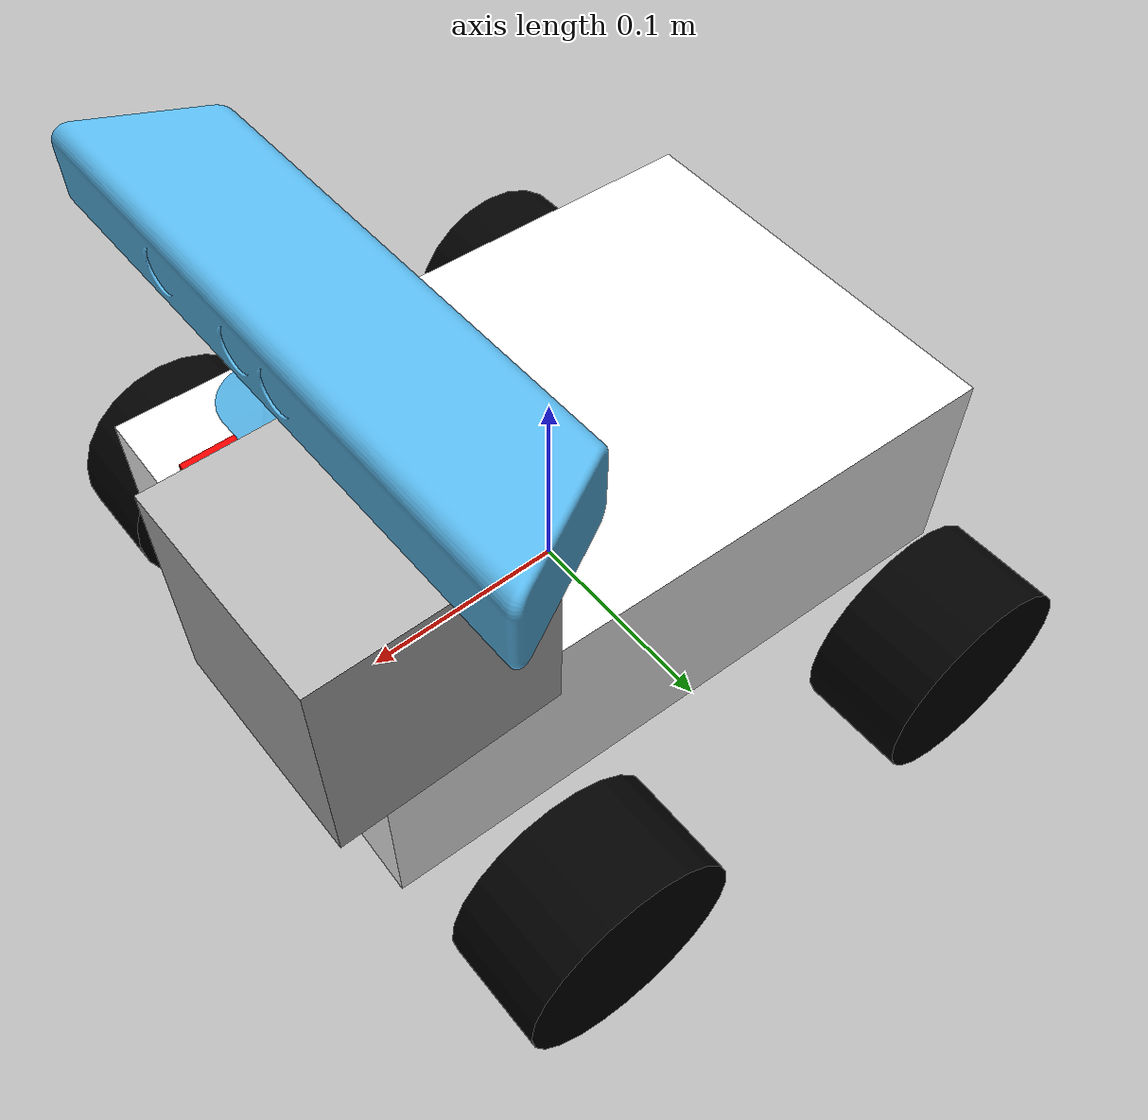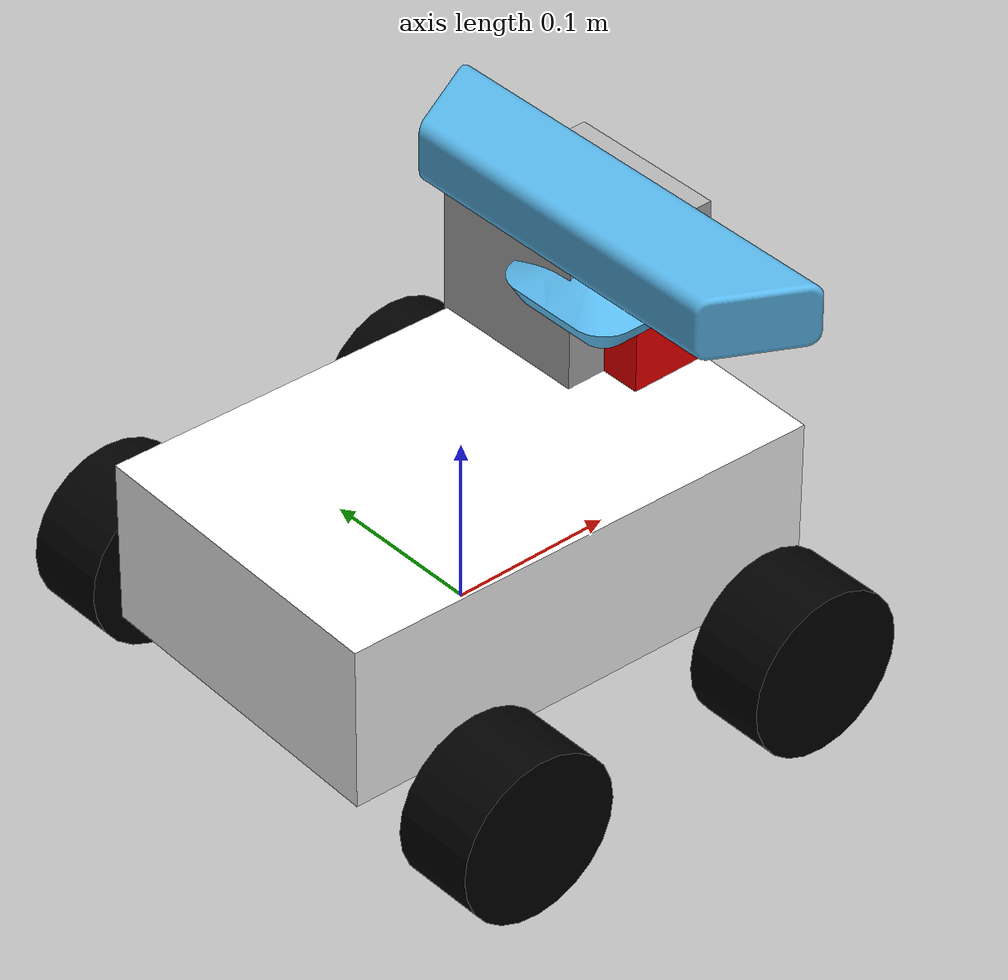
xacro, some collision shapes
<?xml version="1.0"?>

<robot xmlns:xacro="http://www.ros.org/wiki/xacro"
 	xmlns:sensor="http://playerstage.sourceforge.net/gazebo/xmlschema/#sensor"
    	xmlns:controller="http://playerstage.sourceforge.net/gazebo/xmlschema/#controller"
    	xmlns:interface="http://playerstage.sourceforge.net/gazebo/xmlschema/#interface"
	name="robot1_xacro">

  <property name="M_PI" value="3.14159"/>
	<xacro:property name="length_wheel" value="0.05" />
	<xacro:property name="radius_wheel" value="0.05" />
	<xacro:property name="camera_link" value="0.05" />

	<xacro:macro name="default_inertial" params="mass">
               <inertial>
                       <mass value="${mass}" />
                       <inertia ixx="1.0" ixy="0.0" ixz="0.0"
                                iyy="1.0" iyz="0.0"
                                izz="1.0" />
               </inertial>
	</xacro:macro>

	<link name="base_footprint">
   		<visual>
			<geometry>
      				<box size="0.001 0.001 0.001"/>
     			</geometry>
			<origin rpy="0 0 0" xyz="0 0 0"/>
   		</visual>
		<xacro:default_inertial mass="0.0001"/>
 	</link>
 	<xacro:include filename="$(find gslambot)/urdf/robot.gazebo" />

	<gazebo reference="base_footprint">
		<material>Gazebo/Green</material>
		<turnGravityOff>false</turnGravityOff>
	</gazebo>

	<joint name="base_footprint_joint" type="fixed">
		<origin xyz="0 0 0" />
		<parent link="base_footprint" />
		<child link="base_link" />
	</joint>

	<link name="base_link">
   		<visual>
			<geometry>
      				<box size="0.2 .3 .1"/>
     			</geometry>
			<origin rpy="0 0 1.54" xyz="0 0 0.05"/>
			<material name="white">
				<color rgba="1 1 1 1"/>
			</material>
   		</visual>
		<collision>
			<geometry>
       				<box size="0.2 .3 0.1"/>
			</geometry>
		</collision>
		<xacro:default_inertial mass="10"/>
 	</link>

 	<link name="wheel_1">
   		<visual>
     			<geometry>
       				<cylinder length="${length_wheel}" radius="${radius_wheel}"/>
     			</geometry>
			<origin rpy="0 0 0" xyz="0 0 0"/>
   			<material name="black">
				<color rgba="0 0 0 1"/>
			</material>
		</visual>
		<collision>
			<geometry>
       				<cylinder length="${length_wheel}" radius="${radius_wheel}"/>
			</geometry>
		</collision>
		<xacro:default_inertial mass="1"/>
 	</link>

 	<link name="wheel_2">
   		<visual>
     			<geometry>
       				<cylinder length="${length_wheel}" radius="${radius_wheel}"/>
     			</geometry>
			<origin rpy="0 0 0" xyz="0 0 0"/>
   			<material name="black"/>
   		</visual>
		<collision>
			<geometry>
       				<cylinder length="${length_wheel}" radius="${radius_wheel}"/>
			</geometry>
		</collision>
		<xacro:default_inertial mass="1"/>
 	</link>

 	<link name="wheel_3">
   		<visual>
     			<geometry>
       				<cylinder length="${length_wheel}" radius="${radius_wheel}"/>
     			</geometry>

			<origin rpy="0 0 0" xyz="0 0 0"/>
   			<material name="black"/>
   		</visual>
		<collision>
			<geometry>
       				<cylinder length="${length_wheel}" radius="${radius_wheel}"/>
			</geometry>
		</collision>
		<xacro:default_inertial mass="1"/>
 	</link>

 	<link name="wheel_4">
   		<visual>
     			<geometry>
       				<cylinder length="${length_wheel}" radius="${radius_wheel}"/>
     			</geometry>
			<origin rpy="0 0 0" xyz="0 0 0" />
   			<material name="black"/>
   		</visual>
		<collision>
			<geometry>
       				<cylinder length="${length_wheel}" radius="${radius_wheel}"/>
			</geometry>
		</collision>
		<xacro:default_inertial mass="1"/>
 	</link>

 <joint name="base_to_wheel1" type="continuous">
   <parent link="base_link"/>
   <child link="wheel_1"/>
   <origin rpy="-1.5707 0 0" xyz="0.1 0.15 0"/>
   <axis xyz="0 0 1" />
 </joint>

 <joint name="base_to_wheel2" type="continuous">
   <axis xyz="0 0 1" />
   <anchor xyz="0 0 0" />
   <limit effort="100" velocity="100" />
   <parent link="base_link"/>
   <child link="wheel_2"/>
   <origin rpy="-1.5707 0 0" xyz="-0.1 0.15 0"/>
</joint>

 <joint name="base_to_wheel3" type="continuous">
   <parent link="base_link"/>
   <axis xyz="0 0 1" />
   <child link="wheel_3"/>
   <origin rpy="-1.5707 0 0" xyz="0.1 -0.15 0"/>
 </joint>

 <joint name="base_to_wheel4" type="continuous">
   <parent link="base_link"/>
   <axis xyz="0 0 1" />
   <child link="wheel_4"/>
   <origin rpy="-1.5707 0 0" xyz="-0.1 -0.15 0"/>
 </joint>
  <!-- Camera joint -->
  <joint name="camera_joint" type="fixed">
    <axis xyz="0 1 0" />
    <origin xyz="0.125 0 0.125" rpy="0 0 0"/>
    <parent link="base_link"/>
    <child link="camera_link"/>
  </joint>

  <!-- Camera -->
  <link name="camera_link">
    <collision>
      <origin xyz="0 0 0" rpy="0 0 0"/>
      <geometry>
	<box size="0.05 0.05 0.05"/>
      </geometry>
    </collision>

    <visual>
      <origin xyz="0 0 0" rpy="0 0 0"/>
      <geometry>
	<box size="0.05 0.05 0.05"/>
      </geometry>
      <material name="red">
	<color rgba="1 0 0 1"/>
      </material>
    </visual>

    <inertial>
      <mass value="1e-5" />
      <origin xyz="0 0 0" rpy="0 0 0"/>
      <inertia ixx="1e-6" ixy="0" ixz="0" iyy="1e-6" iyz="0" izz="1e-6" />
    </inertial>
  </link>

  <!-- Hokuyo joint -->
  <joint name="hokuyo_joint" type="fixed">
    <origin xyz="0.125 0.05 0.125" rpy="0 0 0"/>
    <parent link="base_link"/>
    <axis xyz="0 1 0" />
    <child link="hokuyo_link"/>
  </joint>

  <!-- Hokuyo Laser -->
  <link name="hokuyo_link">
    <collision>
      <origin xyz="0 0 0" rpy="0 0 0"/>
      <geometry>
	<box size="0.1 0.1 0.1"/>
      </geometry>
    </collision>

    <visual>
      <origin xyz="0 0 0" rpy="0 0 0"/>
      <geometry>
        <mesh filename="package://gslambot/meshes/hokuyo.dae"/>
      </geometry>
    </visual>

    <inertial>
      <mass value="1e-5" />
      <origin xyz="0 0 0" rpy="0 0 0"/>
      <inertia ixx="1e-6" ixy="0" ixz="0" iyy="1e-6" iyz="0" izz="1e-6" />
    </inertial>
  </link>

<gazebo reference="hokuyo_link">
        <sensor name="head_hokuyo_sensor" type="ray">
	      <pose>0.05 0 0 0 0 0</pose>
	      <visualize>true</visualize>
	      <update_rate>40</update_rate>
	      <ray>
	        <scan>
	          <horizontal>
	            <samples>720</samples>
	            <resolution>1</resolution>
	            <min_angle>-1.570796</min_angle>
	            <max_angle>1.570796</max_angle>
	          </horizontal>
	        </scan>
	        <range>
	          <min>0.10</min>
	          <max>10.0</max>
	          <resolution>0.001</resolution>
	        </range>
	      </ray>
	      <plugin filename="libgazebo_ros_laser.so" name="gazebo_ros_head_hokuyo_controller">
	        <topicName>/scan</topicName>
	        <frameName>hokuyo_link</frameName>
	      </plugin>
	    </sensor>
  	</gazebo>

<joint name="kinect_joint" type="fixed">
    <origin xyz="0.125 0.0 0.20" rpy="0 0 0"/>
    <parent link="base_link"/>
    <axis xyz="0 1 0" />
    <child link="base_kinect"/>
  </joint>

<joint name="camera_depth_joint" type="fixed">
  <origin xyz="0 0.03 0" rpy="1.5707963268 3.1415926536 1.5707963268"/>
  <parent link="base_kinect"/>
  <child link="camera_depth_link"/>
</joint>

<link name="camera_depth_link"/>

  <link name="base_kinect">
    <collision>
      <origin xyz="0 0 0" rpy="0 0 0"/>
      <geometry>
	<box size="0.1 0.1 0.1"/>
      </geometry>
    </collision>

    <visual>
      <origin xyz="0 0 0" rpy="0 0 0"/>
      <geometry>
        <mesh filename="package://gslambot/meshes/kinect.dae"/>
      </geometry>
    </visual>

    <inertial>
      <mass value="1e-5" />
      <origin xyz="0 0 0" rpy="0 0 0"/>
      <inertia ixx="1e-6" ixy="0" ixz="0" iyy="1e-6" iyz="0" izz="1e-6" />
    </inertial>
  </link>

<gazebo reference="base_kinect">
        <sensor type="depth" name="kinect_depth_frame_sensor">
        <update_rate>20.0</update_rate>
        <camera name="kinect_depth_camera">
            <horizontal_fov>1.3962634</horizontal_fov>
            <image>
            <width>128</width>
            <height>96</height>
            <format>R8G8B8</format>
            </image>
            <clip>
            <near>0.02</near>
            <far>300</far>
            </clip>
            <noise>
            <type>gaussian</type>
            <mean>0.0</mean>
            <stddev>0.007</stddev>
            </noise>
        </camera>
        <plugin name="kinect_depth_frame_controller" filename="libgazebo_ros_openni_kinect.so">
            <alwaysOn>true</alwaysOn>
            <updateRate>20.0</updateRate>
            <cameraName>kinect_depth_camera</cameraName>
            <imageTopicName>camera/ir/image_raw</imageTopicName>
            <cameraInfoTopicName>camera/ir/camera_info</cameraInfoTopicName>
            <depthImageTopicName>camera/depth/image_raw</depthImageTopicName>
            <depthImageInfoTopicName>camera/depth/camera_info</depthImageInfoTopicName>
            <pointCloudTopicName>camera/depth/points</pointCloudTopicName>
            <frameName>camera_depth_link</frameName>
            <hackBaseline>0.07</hackBaseline>
            <distortion_k1>0.00000001</distortion_k1>
            <distortion_k2>0.00000001</distortion_k2>
            <distortion_k3>0.00000001</distortion_k3>
            <distortion_t1>0.00000001</distortion_t1>
            <distortion_t2>0.00000001</distortion_t2>
        </plugin>
        </sensor>

        <sensor type="camera" name="kinect_rgb_frame_sensor">
        <update_rate>20.0</update_rate>
        <camera name="kinect_rgb_camera">
            <horizontal_fov>1.3962634</horizontal_fov>
            <image>
            <width>128</width>
            <height>96</height>
            <format>R8G8B8</format>
            </image>
            <clip>
            <near>0.02</near>
            <far>300</far>
            </clip>
            <noise>
            <type>gaussian</type>
            <mean>0.0</mean>
            <stddev>0.007</stddev>
            </noise>
        </camera>
        <plugin name="kinect_rgb_frame_controller" filename="libgazebo_ros_camera.so">
            <alwaysOn>true</alwaysOn>
            <updateRate>20.0</updateRate>
            <cameraName>kinect_rgb_camera</cameraName>
            <imageTopicName>camera/rgb/image_raw</imageTopicName>
            <cameraInfoTopicName>camera/rgb/camera_info</cameraInfoTopicName>
            <frameName>camera_depth_link</frameName>
            <hackBaseline>0.07</hackBaseline>
            <pointCloudCutoff>0.5</pointCloudCutoff>
            <distortion_k1>0.00000001</distortion_k1>
            <distortion_k2>0.00000001</distortion_k2>
            <distortion_k3>0.00000001</distortion_k3>
            <distortion_t1>0.00000001</distortion_t1>
            <distortion_t2>0.00000001</distortion_t2>
        </plugin>
        </sensor>
    </gazebo>

  <!-- Drive controller -->
<gazebo>
  <plugin name="skid_steer_drive_controller" filename="libgazebo_ros_skid_steer_drive.so">
    <updateRate>100.0</updateRate>
    <robotNamespace>/</robotNamespace>
    <leftFrontJoint>base_to_wheel1</leftFrontJoint>
    <rightFrontJoint>base_to_wheel3</rightFrontJoint>
    <leftRearJoint>base_to_wheel2</leftRearJoint>
    <rightRearJoint>base_to_wheel4</rightRearJoint>
    <wheelSeparation>4</wheelSeparation>
    <wheelDiameter>0.1</wheelDiameter>
    <robotBaseFrame>base_footprint</robotBaseFrame>
		<torque>2</torque>
    <topicName>cmd_vel</topicName>
    <commandTopic>cmd_vel</commandTopic>
    <odometryTopic>odom</odometryTopic>
    <odometryFrame>odom</odometryFrame>
		<covariance_x>0.01</covariance_x>
		<covariance_y>0.01</covariance_y>
		<covariance_yaw>0.01</covariance_yaw>
		<broadcastTF>1</broadcastTF>
  </plugin>
</gazebo>

</robot>
